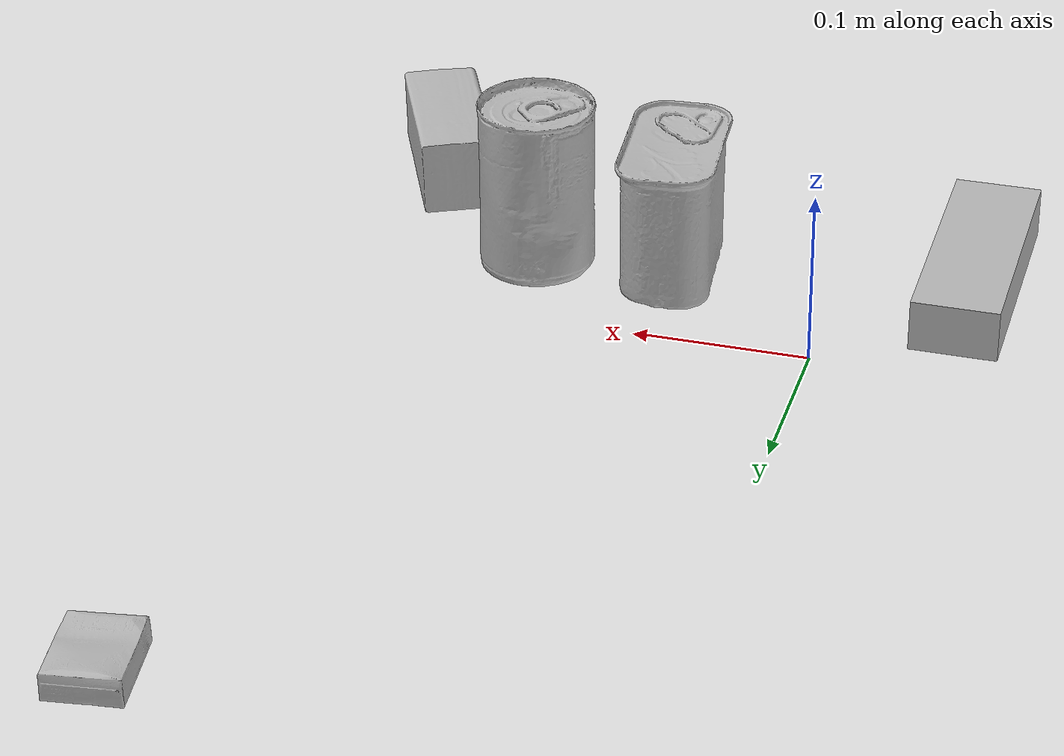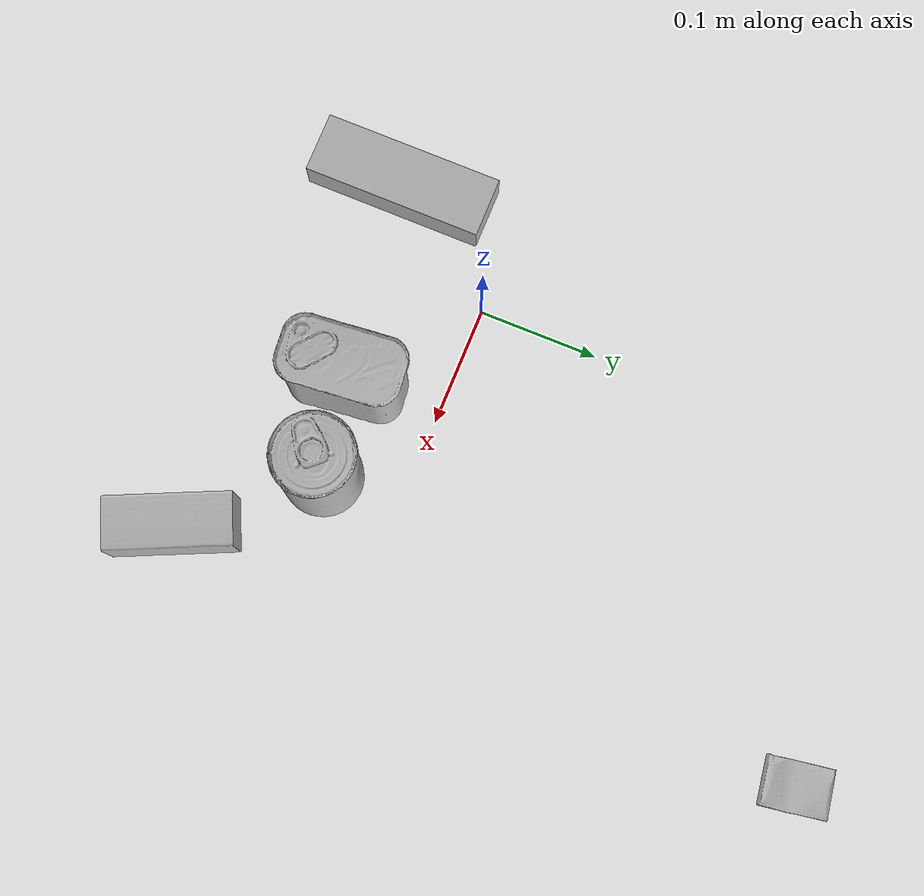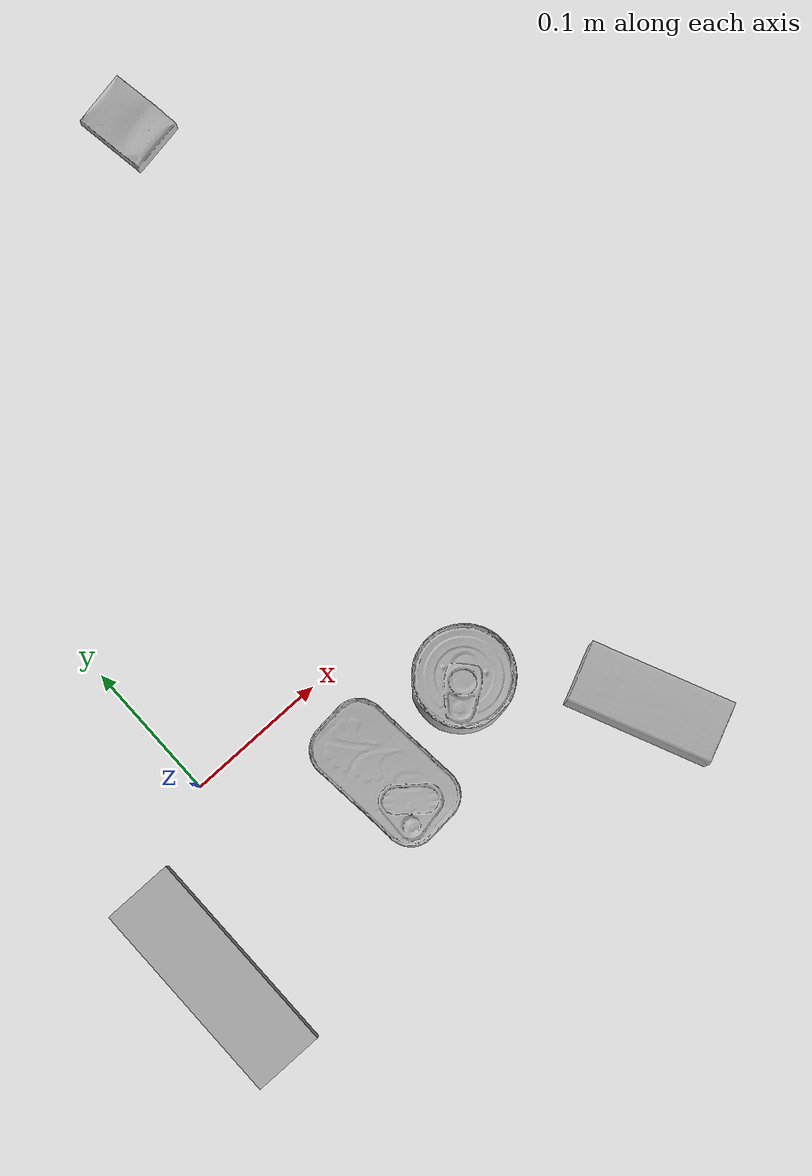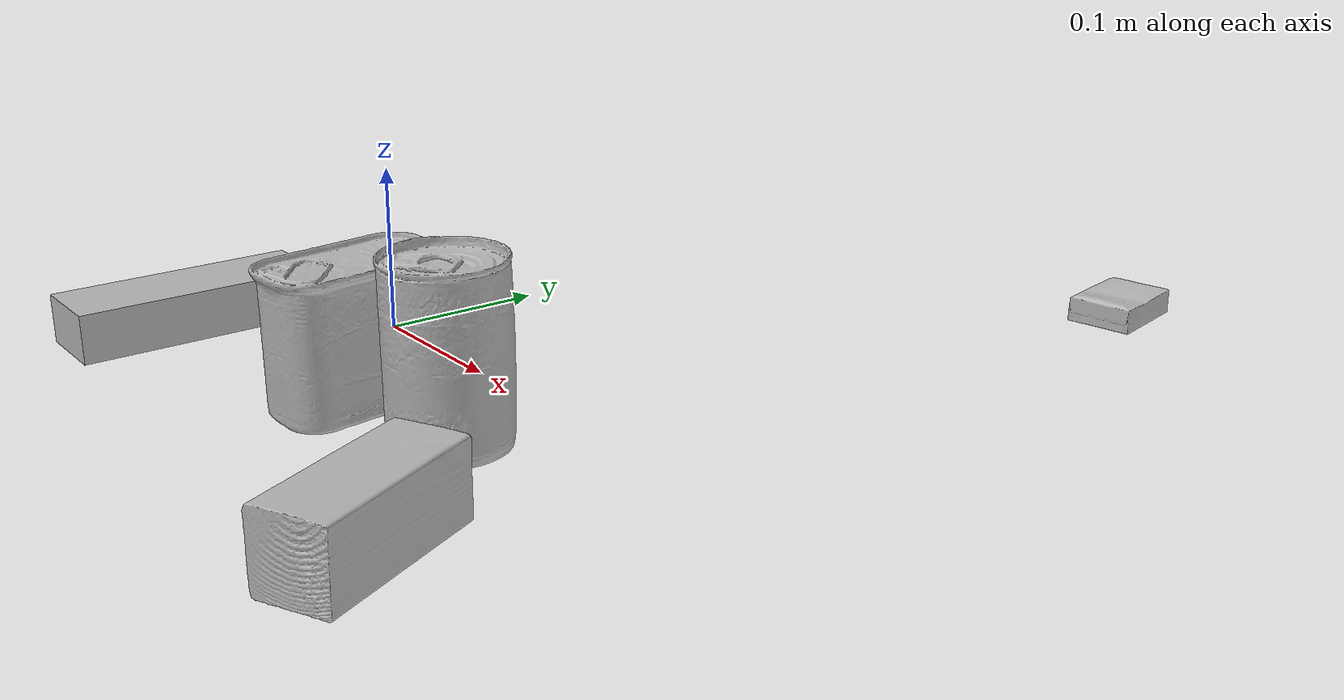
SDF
<sdf version="1.4">
  <world name="default">
    <light name="light1" type="point">
      <pose>0 0 1 0 0 0</pose>
      <diffuse>3 3 3 1</diffuse>
      <specular>3 3 3 1</specular>
    </light>
    <light name="light2" type="point">
      <pose>0 0.5 2 0 0 0</pose>
      <diffuse>1 1 1 1</diffuse>
      <specular>1 1 1 1</specular>
    </light>
    <light name="light3" type="point">
      <pose>0 0.5 2 0 0 0</pose>
      <diffuse>3 3 3 1</diffuse>
      <specular>3 3 3 1</specular>
    </light>
    <scene>
      <ambient>0.7 0.7 0.7</ambient>
    </scene>
    <model name="box1">
      <link name="link_box1">
        <collision name="default">
          <geometry>
            <mesh>
              <uri>model://jenga/collision_meshes/collision.obj</uri>
              <scale>1.0 1.0 1.0</scale>
            </mesh>
          </geometry>
          <surface>
            <friction>
              <ode>
                <mu>0.5</mu>
                <mu2>0.5</mu2>
              </ode>
            </friction>
          <contact>
        <ode>
            <max_vel>0</max_vel>
            <min_depth>0.0001</min_depth>
            <kp>1e8</kp>
        </ode>
    </contact></surface>
        </collision>
        <visual name="default">
          <geometry>
            <mesh>
              <uri>model://jenga/visual_meshes/visual.dae</uri>
              <scale>1.0 1.0 1.0</scale>
            </mesh>
          </geometry>
        </visual>
        <inertial>
          <mass>0.13349448144435883</mass>
          <pose>-2.502855807051674e-07 -0.00010250010382151231 -4.0923401684267446e-05 0.0 -7.342153480750062e-07 0.0</pose>
          <inertia>
            <ixx>3.694116e-05</ixx>
            <iyy>0.0002503123</iyy>
            <izz>0.00026722968</izz>
            <ixy>0</ixy>
            <ixz>0</ixz>
            <iyz>0</iyz>
          </inertia>
        </inertial>
      </link>
      <pose>-0.07537198811769485 -0.10057494044303894 0.014999999664723873 1.0897854963101482e-08 -2.6697426316905647e-09 1.5706179844475767</pose>
    </model>
    <model name="box2">
      <link name="link_box2">
        <collision name="default">
          <geometry>
            <mesh>
              <uri>model://cracker_box/collision_meshes/collision.obj</uri>
              <scale>0.25 0.25 0.25</scale>
            </mesh>
          </geometry>
          <surface>
            <friction>
              <ode>
                <mu>0.5</mu>
                <mu2>0.5</mu2>
              </ode>
            </friction>
          <contact>
        <ode>
            <max_vel>0</max_vel>
            <min_depth>0.0001</min_depth>
            <kp>1e8</kp>
        </ode>
    </contact></surface>
        </collision>
        <visual name="default">
          <geometry>
            <mesh>
              <uri>model://cracker_box/visual_meshes/visual.dae</uri>
              <scale>0.25 0.25 0.25</scale>
            </mesh>
          </geometry>
        </visual>
        <inertial>
          <mass>0.02145323157310486</mass>
          <pose>0.00023660292208660394 6.358561950037256e-05 -0.00042573839891701937 -0.00031620765701486096 -0.011106487737550933 0.0025467954675071156</pose>
          <inertia>
            <ixx>3.4104648e-06</ixx>
            <iyy>5.631348e-06</iyy>
            <izz>8.036451e-06</izz>
            <ixy>0</ixy>
            <ixz>0</ixz>
            <iyz>0</iyz>
          </inertia>
        </inertial>
      </link>
      <pose>0.26203468441963196 0.36938419938087463 0.009096022695302963 -0.01405059439215187 -0.0050165142465094115 1.7245968985792284</pose>
    </model>
    <model name="box3">
      <link name="link_box3">
        <collision name="default">
          <geometry>
            <mesh>
              <uri>model://wood_block/collision_meshes/collision.obj</uri>
              <scale>0.5 0.5 0.5</scale>
            </mesh>
          </geometry>
          <surface>
            <friction>
              <ode>
                <mu>0.5</mu>
                <mu2>0.5</mu2>
              </ode>
            </friction>
          <contact>
        <ode>
            <max_vel>0</max_vel>
            <min_depth>0.0001</min_depth>
            <kp>1e8</kp>
        </ode>
    </contact></surface>
        </collision>
        <visual name="default">
          <geometry>
            <mesh>
              <uri>model://wood_block/visual_meshes/visual.dae</uri>
              <scale>0.5 0.5 0.5</scale>
            </mesh>
          </geometry>
        </visual>
        <inertial>
          <mass>0.16313479840755463</mass>
          <pose>-2.9066577553749084e-06 -0.000285404734313488 0.00013204291462898254 -0.05221116552051519 -0.005192696094342747 -0.006861377806143115</pose>
          <inertia>
            <ixx>5.457476e-05</ixx>
            <iyy>0.00017240169</iyy>
            <izz>0.00017175681</izz>
            <ixy>0</ixy>
            <ixz>0</ixz>
            <iyz>0</iyz>
          </inertia>
        </inertial>
      </link>
      <pose>0.25858399271965027 -0.15860381722450256 0.022629259154200554 -0.00520839903713785 0.005718720424008986 -1.1409639770693762</pose>
    </model>
    <model name="can1">
      <link name="link_can1">
        <collision name="default">
          <geometry>
            <mesh>
              <uri>model://potted_meat_can/collision_meshes/collision.obj</uri>
              <scale>1.0 1.0 1.0</scale>
            </mesh>
          </geometry>
          <surface>
            <friction>
              <ode>
                <mu>0.5</mu>
                <mu2>0.5</mu2>
              </ode>
            </friction>
          <contact>
        <ode>
            <max_vel>0</max_vel>
            <min_depth>0.0001</min_depth>
            <kp>1e8</kp>
        </ode>
    </contact></surface>
        </collision>
        <visual name="default">
          <geometry>
            <mesh>
              <uri>model://potted_meat_can/visual_meshes/visual.dae</uri>
              <scale>1.0 1.0 1.0</scale>
            </mesh>
          </geometry>
        </visual>
        <inertial>
          <mass>0.5782443881034851</mass>
          <pose>0.00022888134117238224 -5.989118290017359e-05 -0.0006367441383190453 -0.028093373189925445 -0.007232601430987569 0.015406267190211613</pose>
          <inertia>
            <ixx>0.0007438508</ixx>
            <iyy>0.00045194585</iyy>
            <izz>0.0005410098</izz>
            <ixy>0</ixy>
            <ixz>0</ixz>
            <iyz>0</iyz>
          </inertia>
        </inertial>
      </link>
      <pose>0.09720107167959213 -0.07722737640142441 0.04212801530957222 -5.062350706725536e-08 -4.4859713706241285e-07 0.08654526127772035</pose>
    </model>
    <model name="can2">
      <link name="link_can2">
        <collision name="default">
          <geometry>
            <mesh>
              <uri>model://tomato_soup_can/collision_meshes/collision.obj</uri>
              <scale>1.0 1.0 1.0</scale>
            </mesh>
          </geometry>
          <surface>
            <friction>
              <ode>
                <mu>0.5</mu>
                <mu2>0.5</mu2>
              </ode>
            </friction>
          <contact>
        <ode>
            <max_vel>0</max_vel>
            <min_depth>0.0001</min_depth>
            <kp>1e8</kp>
        </ode>
    </contact></surface>
        </collision>
        <visual name="default">
          <geometry>
            <mesh>
              <uri>model://tomato_soup_can/visual_meshes/visual.dae</uri>
              <scale>1.0 1.0 1.0</scale>
            </mesh>
          </geometry>
        </visual>
        <inertial>
          <mass>0.191082164645195</mass>
          <pose>0.00012652273289859295 0.00010805522470036522 -0.0017973986687138677 0.007020071598615513 0.0004229929517945175 -0.009903241323856832</pose>
          <inertia>
            <ixx>0.0002095054</ixx>
            <iyy>0.00020829454</iyy>
            <izz>0.0001085847</izz>
            <ixy>0</ixy>
            <ixz>0</ixz>
            <iyz>0</iyz>
          </inertia>
        </inertial>
      </link>
      <pose>0.1752690225839615 -0.06573674827814102 0.05127401277422905 -3.104232494764489e-07 -6.31741914679476e-07 -1.1358078326412233</pose>
    </model>
  <physics type="ode">
      <max_contacts>50</max_contacts>
      <ode>
        <solver>
          <type>quick</type>
          <iters>75</iters>
        </solver>
        <constraints>
          <contact_max_correcting_vel>0</contact_max_correcting_vel>
          <contact_surface_layer>0</contact_surface_layer>
        </constraints>
      </ode>
    </physics></world>
</sdf>
